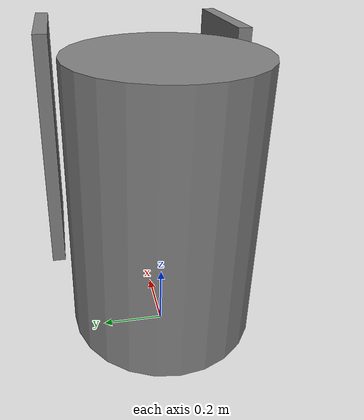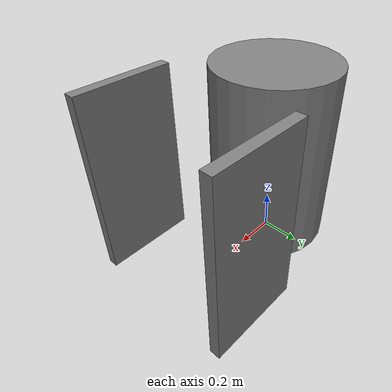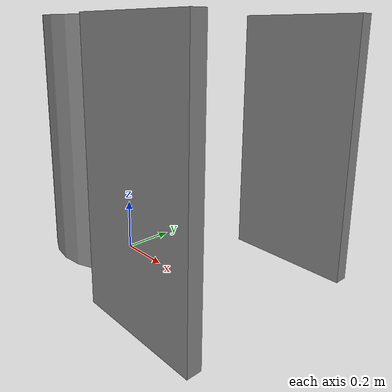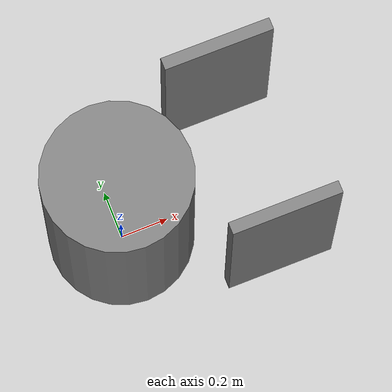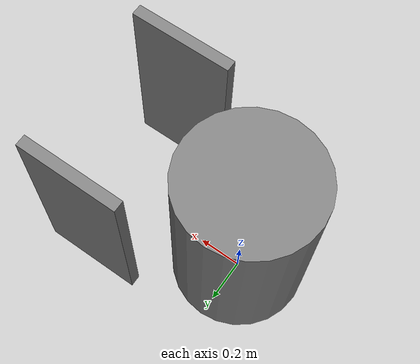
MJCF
<mujoco model="pr2_model">
    <worldbody name="base">
        <body name="pr2" pos="0 0 0.5">
            <joint axis="1 0 0" name="robot_x" type="slide" pos="0 0 0"/>
            <joint axis="0 1 0" name="robot_y" type="slide" pos="0 0 0"/>
            <geom name="pr2" type="cylinder" size="0.3 0.45" friction="1 1 1" />
            <inertial pos="0 0 0" mass="5" diaginertia="0.001 0.001 0.001" />
            <body name="right_finger" pos="0.55 -0.35 0">
                <inertial pos="0 0 0" mass="1" diaginertia="0.001 0.001 0.001" />
                <joint name="right_finger_joint" axis="0 1 0" limited="true" range="-0.1 0.1" type="slide" />
                <geom pos="0 0 0" size="0.225 0.025 0.45" type="box" />
            </body>
            <body name="left_finger" pos="0.55 0.35 0">
                <inertial pos="0 0 0" mass="1" diaginertia="0.001 0.001 0.001" />
                <joint name="left_finger_joint" axis="0 -1 0" limited="true" range="-0.1 0.1" type="slide" />
                <geom pos="0 0 0" size="0.225 0.025 0.45" type="box" />
            </body>
        </body>
    </worldbody>

    <actuator>
        <position gear="1" kp="10000" joint="robot_x" name="robot_x" forcelimited="true" forcerange="-50 50" />
        <position gear="1" kp="10000" joint="robot_y" name="robot_y" forcelimited="true" forcerange="-50 50" />
        <position gear="1" kp="10000" joint="left_finger_joint" name="left_grip" forcelimited="true" forcerange="-50 50" />
        <position gear="1" kp="10000" joint="right_finger_joint" name="right_grip" forcelimited="true" forcerange="-50 50" />
    </actuator>
</mujoco>
